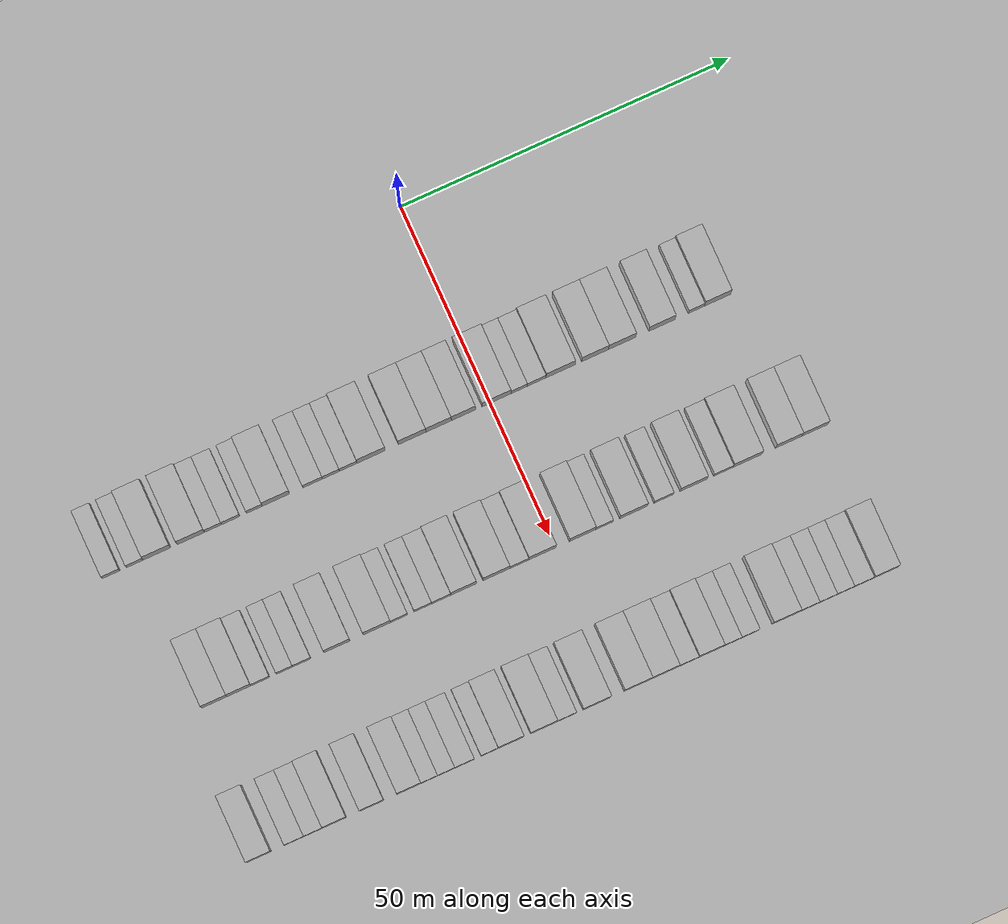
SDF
<sdf version="1.6">
 <world name="default">
  <include><name>ground_plane_1</name><uri>model://HANNAS_ground_plane</uri></include>
  <include>
   <name>ground_plane_2</name>
   <uri>model://HANNAS_ground_plane</uri>
   <pose>100 0 0  0 0 0</pose>
  </include>
  <model name="building_50">
   <static>1</static>
   <pose>25.0000 -57.4891 0 0.000000 0.000000 0.000000</pose>
   <link name="link">
    <pose>0 0 3.00 0 0 0</pose>
    <collision name="collision"><geometry><box><size>10.0000 2.6970 6.0000</size></box></geometry></collision>
    <visual name="visual">
     <cast_shadows>0</cast_shadows>
     <geometry><box><size>10.0000 2.6970 6.0000</size></box></geometry>
     <material>
      <script>
       <uri>model://HANNAS_wall/materials/scripts</uri>
       <uri>model://HANNAS_wall/materials/textures</uri>
       <name>vrc/HANNAS_wall</name>
      </script>
     </material>
    </visual>
   </link>
  </model>
  <model name="building_51">
   <static>1</static>
   <pose>25.0000 -53.8636 0 0.000000 0.000000 0.000000</pose>
   <link name="link">
    <pose>0 0 3.00 0 0 0</pose>
    <collision name="collision"><geometry><box><size>10.0000 2.5540 6.0000</size></box></geometry></collision>
    <visual name="visual">
     <cast_shadows>0</cast_shadows>
     <geometry><box><size>10.0000 2.5540 6.0000</size></box></geometry>
     <material>
      <script>
       <uri>model://HANNAS_wall/materials/scripts</uri>
       <uri>model://HANNAS_wall/materials/textures</uri>
       <name>vrc/HANNAS_wall</name>
      </script>
     </material>
    </visual>
   </link>
  </model>
  <model name="building_52">
   <static>1</static>
   <pose>25.0000 -50.5123 0 0.000000 0.000000 0.000000</pose>
   <link name="link">
    <pose>0 0 4.50 0 0 0</pose>
    <collision name="collision"><geometry><box><size>10.0000 4.1485 9.0000</size></box></geometry></collision>
    <visual name="visual">
     <cast_shadows>0</cast_shadows>
     <geometry><box><size>10.0000 4.1485 9.0000</size></box></geometry>
     <material>
      <script>
       <uri>model://HANNAS_wall/materials/scripts</uri>
       <uri>model://HANNAS_wall/materials/textures</uri>
       <name>vrc/HANNAS_wall</name>
      </script>
     </material>
    </visual>
   </link>
  </model>
  <model name="building_53">
   <static>1</static>
   <pose>25.0000 -45.3715 0 0.000000 0.000000 0.000000</pose>
   <link name="link">
    <pose>0 0 4.50 0 0 0</pose>
    <collision name="collision"><geometry><box><size>10.0000 4.1330 9.0000</size></box></geometry></collision>
    <visual name="visual">
     <cast_shadows>0</cast_shadows>
     <geometry><box><size>10.0000 4.1330 9.0000</size></box></geometry>
     <material>
      <script>
       <uri>model://HANNAS_wall/materials/scripts</uri>
       <uri>model://HANNAS_wall/materials/textures</uri>
       <name>vrc/HANNAS_wall</name>
      </script>
     </material>
    </visual>
   </link>
  </model>
  <model name="building_54">
   <static>1</static>
   <pose>25.0000 -42.0120 0 0.000000 0.000000 0.000000</pose>
   <link name="link">
    <pose>0 0 3.00 0 0 0</pose>
    <collision name="collision"><geometry><box><size>10.0000 2.5860 6.0000</size></box></geometry></collision>
    <visual name="visual">
     <cast_shadows>0</cast_shadows>
     <geometry><box><size>10.0000 2.5860 6.0000</size></box></geometry>
     <material>
      <script>
       <uri>model://HANNAS_wall/materials/scripts</uri>
       <uri>model://HANNAS_wall/materials/textures</uri>
       <name>vrc/HANNAS_wall</name>
      </script>
     </material>
    </visual>
   </link>
  </model>
  <model name="building_55">
   <static>1</static>
   <pose>25.0000 -39.3343 0 0.000000 0.000000 0.000000</pose>
   <link name="link">
    <pose>0 0 3.00 0 0 0</pose>
    <collision name="collision"><geometry><box><size>10.0000 2.7694 6.0000</size></box></geometry></collision>
    <visual name="visual">
     <cast_shadows>0</cast_shadows>
     <geometry><box><size>10.0000 2.7694 6.0000</size></box></geometry>
     <material>
      <script>
       <uri>model://HANNAS_wall/materials/scripts</uri>
       <uri>model://HANNAS_wall/materials/textures</uri>
       <name>vrc/HANNAS_wall</name>
      </script>
     </material>
    </visual>
   </link>
  </model>
  <model name="building_56">
   <static>1</static>
   <pose>25.0000 -35.7358 0 0.000000 0.000000 0.000000</pose>
   <link name="link">
    <pose>0 0 3.00 0 0 0</pose>
    <collision name="collision"><geometry><box><size>10.0000 2.4275 6.0000</size></box></geometry></collision>
    <visual name="visual">
     <cast_shadows>0</cast_shadows>
     <geometry><box><size>10.0000 2.4275 6.0000</size></box></geometry>
     <material>
      <script>
       <uri>model://HANNAS_wall/materials/scripts</uri>
       <uri>model://HANNAS_wall/materials/textures</uri>
       <name>vrc/HANNAS_wall</name>
      </script>
     </material>
    </visual>
   </link>
  </model>
  <model name="building_57">
   <static>1</static>
   <pose>25.0000 -32.4609 0 0.000000 0.000000 0.000000</pose>
   <link name="link">
    <pose>0 0 4.50 0 0 0</pose>
    <collision name="collision"><geometry><box><size>10.0000 4.1224 9.0000</size></box></geometry></collision>
    <visual name="visual">
     <cast_shadows>0</cast_shadows>
     <geometry><box><size>10.0000 4.1224 9.0000</size></box></geometry>
     <material>
      <script>
       <uri>model://HANNAS_wall/materials/scripts</uri>
       <uri>model://HANNAS_wall/materials/textures</uri>
       <name>vrc/HANNAS_wall</name>
      </script>
     </material>
    </visual>
   </link>
  </model>
  <model name="building_58">
   <static>1</static>
   <pose>25.0000 -26.9030 0 0.000000 0.000000 0.000000</pose>
   <link name="link">
    <pose>0 0 3.00 0 0 0</pose>
    <collision name="collision"><geometry><box><size>10.0000 2.9934 6.0000</size></box></geometry></collision>
    <visual name="visual">
     <cast_shadows>0</cast_shadows>
     <geometry><box><size>10.0000 2.9934 6.0000</size></box></geometry>
     <material>
      <script>
       <uri>model://HANNAS_wall/materials/scripts</uri>
       <uri>model://HANNAS_wall/materials/textures</uri>
       <name>vrc/HANNAS_wall</name>
      </script>
     </material>
    </visual>
   </link>
  </model>
  <model name="building_59">
   <static>1</static>
   <pose>25.0000 -24.1162 0 0.000000 0.000000 0.000000</pose>
   <link name="link">
    <pose>0 0 3.00 0 0 0</pose>
    <collision name="collision"><geometry><box><size>10.0000 2.5802 6.0000</size></box></geometry></collision>
    <visual name="visual">
     <cast_shadows>0</cast_shadows>
     <geometry><box><size>10.0000 2.5802 6.0000</size></box></geometry>
     <material>
      <script>
       <uri>model://HANNAS_wall/materials/scripts</uri>
       <uri>model://HANNAS_wall/materials/textures</uri>
       <name>vrc/HANNAS_wall</name>
      </script>
     </material>
    </visual>
   </link>
  </model>
  <model name="building_60">
   <static>1</static>
   <pose>25.0000 -21.4973 0 0.000000 0.000000 0.000000</pose>
   <link name="link">
    <pose>0 0 3.00 0 0 0</pose>
    <collision name="collision"><geometry><box><size>10.0000 2.6576 6.0000</size></box></geometry></collision>
    <visual name="visual">
     <cast_shadows>0</cast_shadows>
     <geometry><box><size>10.0000 2.6576 6.0000</size></box></geometry>
     <material>
      <script>
       <uri>model://HANNAS_wall/materials/scripts</uri>
       <uri>model://HANNAS_wall/materials/textures</uri>
       <name>vrc/HANNAS_wall</name>
      </script>
     </material>
    </visual>
   </link>
  </model>
  <model name="building_61">
   <static>1</static>
   <pose>25.0000 -18.0315 0 0.000000 0.000000 0.000000</pose>
   <link name="link">
    <pose>0 0 4.50 0 0 0</pose>
    <collision name="collision"><geometry><box><size>10.0000 4.2741 9.0000</size></box></geometry></collision>
    <visual name="visual">
     <cast_shadows>0</cast_shadows>
     <geometry><box><size>10.0000 4.2741 9.0000</size></box></geometry>
     <material>
      <script>
       <uri>model://HANNAS_wall/materials/scripts</uri>
       <uri>model://HANNAS_wall/materials/textures</uri>
       <name>vrc/HANNAS_wall</name>
      </script>
     </material>
    </visual>
   </link>
  </model>
  <model name="building_62">
   <static>1</static>
   <pose>25.0000 -11.8060 0 0.000000 0.000000 0.000000</pose>
   <link name="link">
    <pose>0 0 4.50 0 0 0</pose>
    <collision name="collision"><geometry><box><size>10.0000 4.1769 9.0000</size></box></geometry></collision>
    <visual name="visual">
     <cast_shadows>0</cast_shadows>
     <geometry><box><size>10.0000 4.1769 9.0000</size></box></geometry>
     <material>
      <script>
       <uri>model://HANNAS_wall/materials/scripts</uri>
       <uri>model://HANNAS_wall/materials/textures</uri>
       <name>vrc/HANNAS_wall</name>
      </script>
     </material>
    </visual>
   </link>
  </model>
  <model name="building_63">
   <static>1</static>
   <pose>25.0000 -7.7786 0 0.000000 0.000000 0.000000</pose>
   <link name="link">
    <pose>0 0 4.50 0 0 0</pose>
    <collision name="collision"><geometry><box><size>10.0000 3.8778 9.0000</size></box></geometry></collision>
    <visual name="visual">
     <cast_shadows>0</cast_shadows>
     <geometry><box><size>10.0000 3.8778 9.0000</size></box></geometry>
     <material>
      <script>
       <uri>model://HANNAS_wall/materials/scripts</uri>
       <uri>model://HANNAS_wall/materials/textures</uri>
       <name>vrc/HANNAS_wall</name>
      </script>
     </material>
    </visual>
   </link>
  </model>
  <model name="building_64">
   <static>1</static>
   <pose>25.0000 -4.0102 0 0.000000 0.000000 0.000000</pose>
   <link name="link">
    <pose>0 0 4.50 0 0 0</pose>
    <collision name="collision"><geometry><box><size>10.0000 3.6590 9.0000</size></box></geometry></collision>
    <visual name="visual">
     <cast_shadows>0</cast_shadows>
     <geometry><box><size>10.0000 3.6590 9.0000</size></box></geometry>
     <material>
      <script>
       <uri>model://HANNAS_wall/materials/scripts</uri>
       <uri>model://HANNAS_wall/materials/textures</uri>
       <name>vrc/HANNAS_wall</name>
      </script>
     </material>
    </visual>
   </link>
  </model>
  <model name="building_65">
   <static>1</static>
   <pose>25.0000 1.0121 0 0.000000 0.000000 0.000000</pose>
   <link name="link">
    <pose>0 0 4.50 0 0 0</pose>
    <collision name="collision"><geometry><box><size>10.0000 4.3856 9.0000</size></box></geometry></collision>
    <visual name="visual">
     <cast_shadows>0</cast_shadows>
     <geometry><box><size>10.0000 4.3856 9.0000</size></box></geometry>
     <material>
      <script>
       <uri>model://HANNAS_wall/materials/scripts</uri>
       <uri>model://HANNAS_wall/materials/textures</uri>
       <name>vrc/HANNAS_wall</name>
      </script>
     </material>
    </visual>
   </link>
  </model>
  <model name="building_66">
   <static>1</static>
   <pose>25.0000 4.4608 0 0.000000 0.000000 0.000000</pose>
   <link name="link">
    <pose>0 0 3.00 0 0 0</pose>
    <collision name="collision"><geometry><box><size>10.0000 2.5119 6.0000</size></box></geometry></collision>
    <visual name="visual">
     <cast_shadows>0</cast_shadows>
     <geometry><box><size>10.0000 2.5119 6.0000</size></box></geometry>
     <material>
      <script>
       <uri>model://HANNAS_wall/materials/scripts</uri>
       <uri>model://HANNAS_wall/materials/textures</uri>
       <name>vrc/HANNAS_wall</name>
      </script>
     </material>
    </visual>
   </link>
  </model>
  <model name="building_67">
   <static>1</static>
   <pose>25.0000 7.1323 0 0.000000 0.000000 0.000000</pose>
   <link name="link">
    <pose>0 0 3.00 0 0 0</pose>
    <collision name="collision"><geometry><box><size>10.0000 2.8311 6.0000</size></box></geometry></collision>
    <visual name="visual">
     <cast_shadows>0</cast_shadows>
     <geometry><box><size>10.0000 2.8311 6.0000</size></box></geometry>
     <material>
      <script>
       <uri>model://HANNAS_wall/materials/scripts</uri>
       <uri>model://HANNAS_wall/materials/textures</uri>
       <name>vrc/HANNAS_wall</name>
      </script>
     </material>
    </visual>
   </link>
  </model>
  <model name="building_68">
   <static>1</static>
   <pose>25.0000 10.7667 0 0.000000 0.000000 0.000000</pose>
   <link name="link">
    <pose>0 0 4.50 0 0 0</pose>
    <collision name="collision"><geometry><box><size>10.0000 4.4375 9.0000</size></box></geometry></collision>
    <visual name="visual">
     <cast_shadows>0</cast_shadows>
     <geometry><box><size>10.0000 4.4375 9.0000</size></box></geometry>
     <material>
      <script>
       <uri>model://HANNAS_wall/materials/scripts</uri>
       <uri>model://HANNAS_wall/materials/textures</uri>
       <name>vrc/HANNAS_wall</name>
      </script>
     </material>
    </visual>
   </link>
  </model>
  <model name="building_69">
   <static>1</static>
   <pose>25.0000 16.0203 0 0.000000 0.000000 0.000000</pose>
   <link name="link">
    <pose>0 0 4.50 0 0 0</pose>
    <collision name="collision"><geometry><box><size>10.0000 4.0698 9.0000</size></box></geometry></collision>
    <visual name="visual">
     <cast_shadows>0</cast_shadows>
     <geometry><box><size>10.0000 4.0698 9.0000</size></box></geometry>
     <material>
      <script>
       <uri>model://HANNAS_wall/materials/scripts</uri>
       <uri>model://HANNAS_wall/materials/textures</uri>
       <name>vrc/HANNAS_wall</name>
      </script>
     </material>
    </visual>
   </link>
  </model>
  <model name="building_70">
   <static>1</static>
   <pose>25.0000 20.1271 0 0.000000 0.000000 0.000000</pose>
   <link name="link">
    <pose>0 0 4.50 0 0 0</pose>
    <collision name="collision"><geometry><box><size>10.0000 4.1437 9.0000</size></box></geometry></collision>
    <visual name="visual">
     <cast_shadows>0</cast_shadows>
     <geometry><box><size>10.0000 4.1437 9.0000</size></box></geometry>
     <material>
      <script>
       <uri>model://HANNAS_wall/materials/scripts</uri>
       <uri>model://HANNAS_wall/materials/textures</uri>
       <name>vrc/HANNAS_wall</name>
      </script>
     </material>
    </visual>
   </link>
  </model>
  <model name="building_71">
   <static>1</static>
   <pose>25.0000 26.1913 0 0.000000 0.000000 0.000000</pose>
   <link name="link">
    <pose>0 0 4.50 0 0 0</pose>
    <collision name="collision"><geometry><box><size>10.0000 3.9847 9.0000</size></box></geometry></collision>
    <visual name="visual">
     <cast_shadows>0</cast_shadows>
     <geometry><box><size>10.0000 3.9847 9.0000</size></box></geometry>
     <material>
      <script>
       <uri>model://HANNAS_wall/materials/scripts</uri>
       <uri>model://HANNAS_wall/materials/textures</uri>
       <name>vrc/HANNAS_wall</name>
      </script>
     </material>
    </visual>
   </link>
  </model>
  <model name="building_72">
   <static>1</static>
   <pose>25.0000 31.4097 0 0.000000 0.000000 0.000000</pose>
   <link name="link">
    <pose>0 0 3.00 0 0 0</pose>
    <collision name="collision"><geometry><box><size>10.0000 2.4521 6.0000</size></box></geometry></collision>
    <visual name="visual">
     <cast_shadows>0</cast_shadows>
     <geometry><box><size>10.0000 2.4521 6.0000</size></box></geometry>
     <material>
      <script>
       <uri>model://HANNAS_wall/materials/scripts</uri>
       <uri>model://HANNAS_wall/materials/textures</uri>
       <name>vrc/HANNAS_wall</name>
      </script>
     </material>
    </visual>
   </link>
  </model>
  <model name="building_73">
   <static>1</static>
   <pose>25.0000 34.6333 0 0.000000 0.000000 0.000000</pose>
   <link name="link">
    <pose>0 0 4.50 0 0 0</pose>
    <collision name="collision"><geometry><box><size>10.0000 3.9953 9.0000</size></box></geometry></collision>
    <visual name="visual">
     <cast_shadows>0</cast_shadows>
     <geometry><box><size>10.0000 3.9953 9.0000</size></box></geometry>
     <material>
      <script>
       <uri>model://HANNAS_wall/materials/scripts</uri>
       <uri>model://HANNAS_wall/materials/textures</uri>
       <name>vrc/HANNAS_wall</name>
      </script>
     </material>
    </visual>
   </link>
  </model>
  <model name="building_174">
   <static>1</static>
   <pose>47.0000 -51.7095 0 0.000000 0.000000 0.000000</pose>
   <link name="link">
    <pose>0 0 4.50 0 0 0</pose>
    <collision name="collision"><geometry><box><size>10.0000 3.8253 9.0000</size></box></geometry></collision>
    <visual name="visual">
     <cast_shadows>0</cast_shadows>
     <geometry><box><size>10.0000 3.8253 9.0000</size></box></geometry>
     <material>
      <script>
       <uri>model://HANNAS_wall/materials/scripts</uri>
       <uri>model://HANNAS_wall/materials/textures</uri>
       <name>vrc/HANNAS_wall</name>
      </script>
     </material>
    </visual>
   </link>
  </model>
  <model name="building_175">
   <static>1</static>
   <pose>47.0000 -47.9745 0 0.000000 0.000000 0.000000</pose>
   <link name="link">
    <pose>0 0 4.50 0 0 0</pose>
    <collision name="collision"><geometry><box><size>10.0000 3.6447 9.0000</size></box></geometry></collision>
    <visual name="visual">
     <cast_shadows>0</cast_shadows>
     <geometry><box><size>10.0000 3.6447 9.0000</size></box></geometry>
     <material>
      <script>
       <uri>model://HANNAS_wall/materials/scripts</uri>
       <uri>model://HANNAS_wall/materials/textures</uri>
       <name>vrc/HANNAS_wall</name>
      </script>
     </material>
    </visual>
   </link>
  </model>
  <model name="building_176">
   <static>1</static>
   <pose>47.0000 -44.7426 0 0.000000 0.000000 0.000000</pose>
   <link name="link">
    <pose>0 0 3.00 0 0 0</pose>
    <collision name="collision"><geometry><box><size>10.0000 2.8192 6.0000</size></box></geometry></collision>
    <visual name="visual">
     <cast_shadows>0</cast_shadows>
     <geometry><box><size>10.0000 2.8192 6.0000</size></box></geometry>
     <material>
      <script>
       <uri>model://HANNAS_wall/materials/scripts</uri>
       <uri>model://HANNAS_wall/materials/textures</uri>
       <name>vrc/HANNAS_wall</name>
      </script>
     </material>
    </visual>
   </link>
  </model>
  <model name="building_177">
   <static>1</static>
   <pose>47.0000 -41.0930 0 0.000000 0.000000 0.000000</pose>
   <link name="link">
    <pose>0 0 3.00 0 0 0</pose>
    <collision name="collision"><geometry><box><size>10.0000 2.4799 6.0000</size></box></geometry></collision>
    <visual name="visual">
     <cast_shadows>0</cast_shadows>
     <geometry><box><size>10.0000 2.4799 6.0000</size></box></geometry>
     <material>
      <script>
       <uri>model://HANNAS_wall/materials/scripts</uri>
       <uri>model://HANNAS_wall/materials/textures</uri>
       <name>vrc/HANNAS_wall</name>
      </script>
     </material>
    </visual>
   </link>
  </model>
  <model name="building_178">
   <static>1</static>
   <pose>47.0000 -38.4789 0 0.000000 0.000000 0.000000</pose>
   <link name="link">
    <pose>0 0 3.00 0 0 0</pose>
    <collision name="collision"><geometry><box><size>10.0000 2.7483 6.0000</size></box></geometry></collision>
    <visual name="visual">
     <cast_shadows>0</cast_shadows>
     <geometry><box><size>10.0000 2.7483 6.0000</size></box></geometry>
     <material>
      <script>
       <uri>model://HANNAS_wall/materials/scripts</uri>
       <uri>model://HANNAS_wall/materials/textures</uri>
       <name>vrc/HANNAS_wall</name>
      </script>
     </material>
    </visual>
   </link>
  </model>
  <model name="building_179">
   <static>1</static>
   <pose>47.0000 -33.1369 0 0.000000 0.000000 0.000000</pose>
   <link name="link">
    <pose>0 0 4.50 0 0 0</pose>
    <collision name="collision"><geometry><box><size>10.0000 3.9358 9.0000</size></box></geometry></collision>
    <visual name="visual">
     <cast_shadows>0</cast_shadows>
     <geometry><box><size>10.0000 3.9358 9.0000</size></box></geometry>
     <material>
      <script>
       <uri>model://HANNAS_wall/materials/scripts</uri>
       <uri>model://HANNAS_wall/materials/textures</uri>
       <name>vrc/HANNAS_wall</name>
      </script>
     </material>
    </visual>
   </link>
  </model>
  <model name="building_180">
   <static>1</static>
   <pose>47.0000 -27.0961 0 0.000000 0.000000 0.000000</pose>
   <link name="link">
    <pose>0 0 4.50 0 0 0</pose>
    <collision name="collision"><geometry><box><size>10.0000 4.1457 9.0000</size></box></geometry></collision>
    <visual name="visual">
     <cast_shadows>0</cast_shadows>
     <geometry><box><size>10.0000 4.1457 9.0000</size></box></geometry>
     <material>
      <script>
       <uri>model://HANNAS_wall/materials/scripts</uri>
       <uri>model://HANNAS_wall/materials/textures</uri>
       <name>vrc/HANNAS_wall</name>
      </script>
     </material>
    </visual>
   </link>
  </model>
  <model name="building_181">
   <static>1</static>
   <pose>47.0000 -23.7338 0 0.000000 0.000000 0.000000</pose>
   <link name="link">
    <pose>0 0 3.00 0 0 0</pose>
    <collision name="collision"><geometry><box><size>10.0000 2.5789 6.0000</size></box></geometry></collision>
    <visual name="visual">
     <cast_shadows>0</cast_shadows>
     <geometry><box><size>10.0000 2.5789 6.0000</size></box></geometry>
     <material>
      <script>
       <uri>model://HANNAS_wall/materials/scripts</uri>
       <uri>model://HANNAS_wall/materials/textures</uri>
       <name>vrc/HANNAS_wall</name>
      </script>
     </material>
    </visual>
   </link>
  </model>
  <model name="building_182">
   <static>1</static>
   <pose>47.0000 -20.1153 0 0.000000 0.000000 0.000000</pose>
   <link name="link">
    <pose>0 0 3.00 0 0 0</pose>
    <collision name="collision"><geometry><box><size>10.0000 2.6581 6.0000</size></box></geometry></collision>
    <visual name="visual">
     <cast_shadows>0</cast_shadows>
     <geometry><box><size>10.0000 2.6581 6.0000</size></box></geometry>
     <material>
      <script>
       <uri>model://HANNAS_wall/materials/scripts</uri>
       <uri>model://HANNAS_wall/materials/textures</uri>
       <name>vrc/HANNAS_wall</name>
      </script>
     </material>
    </visual>
   </link>
  </model>
  <model name="building_183">
   <static>1</static>
   <pose>47.0000 -17.3359 0 0.000000 0.000000 0.000000</pose>
   <link name="link">
    <pose>0 0 3.00 0 0 0</pose>
    <collision name="collision"><geometry><box><size>10.0000 2.9008 6.0000</size></box></geometry></collision>
    <visual name="visual">
     <cast_shadows>0</cast_shadows>
     <geometry><box><size>10.0000 2.9008 6.0000</size></box></geometry>
     <material>
      <script>
       <uri>model://HANNAS_wall/materials/scripts</uri>
       <uri>model://HANNAS_wall/materials/textures</uri>
       <name>vrc/HANNAS_wall</name>
      </script>
     </material>
    </visual>
   </link>
  </model>
  <model name="building_184">
   <static>1</static>
   <pose>47.0000 -13.9478 0 0.000000 0.000000 0.000000</pose>
   <link name="link">
    <pose>0 0 4.50 0 0 0</pose>
    <collision name="collision"><geometry><box><size>10.0000 3.8754 9.0000</size></box></geometry></collision>
    <visual name="visual">
     <cast_shadows>0</cast_shadows>
     <geometry><box><size>10.0000 3.8754 9.0000</size></box></geometry>
     <material>
      <script>
       <uri>model://HANNAS_wall/materials/scripts</uri>
       <uri>model://HANNAS_wall/materials/textures</uri>
       <name>vrc/HANNAS_wall</name>
      </script>
     </material>
    </visual>
   </link>
  </model>
  <model name="building_185">
   <static>1</static>
   <pose>47.0000 -8.9620 0 0.000000 0.000000 0.000000</pose>
   <link name="link">
    <pose>0 0 4.50 0 0 0</pose>
    <collision name="collision"><geometry><box><size>10.0000 4.0961 9.0000</size></box></geometry></collision>
    <visual name="visual">
     <cast_shadows>0</cast_shadows>
     <geometry><box><size>10.0000 4.0961 9.0000</size></box></geometry>
     <material>
      <script>
       <uri>model://HANNAS_wall/materials/scripts</uri>
       <uri>model://HANNAS_wall/materials/textures</uri>
       <name>vrc/HANNAS_wall</name>
      </script>
     </material>
    </visual>
   </link>
  </model>
  <model name="building_186">
   <static>1</static>
   <pose>47.0000 -5.4801 0 0.000000 0.000000 0.000000</pose>
   <link name="link">
    <pose>0 0 3.00 0 0 0</pose>
    <collision name="collision"><geometry><box><size>10.0000 2.8677 6.0000</size></box></geometry></collision>
    <visual name="visual">
     <cast_shadows>0</cast_shadows>
     <geometry><box><size>10.0000 2.8677 6.0000</size></box></geometry>
     <material>
      <script>
       <uri>model://HANNAS_wall/materials/scripts</uri>
       <uri>model://HANNAS_wall/materials/textures</uri>
       <name>vrc/HANNAS_wall</name>
      </script>
     </material>
    </visual>
   </link>
  </model>
  <model name="building_187">
   <static>1</static>
   <pose>47.0000 -1.9641 0 0.000000 0.000000 0.000000</pose>
   <link name="link">
    <pose>0 0 4.50 0 0 0</pose>
    <collision name="collision"><geometry><box><size>10.0000 4.1644 9.0000</size></box></geometry></collision>
    <visual name="visual">
     <cast_shadows>0</cast_shadows>
     <geometry><box><size>10.0000 4.1644 9.0000</size></box></geometry>
     <material>
      <script>
       <uri>model://HANNAS_wall/materials/scripts</uri>
       <uri>model://HANNAS_wall/materials/textures</uri>
       <name>vrc/HANNAS_wall</name>
      </script>
     </material>
    </visual>
   </link>
  </model>
  <model name="building_188">
   <static>1</static>
   <pose>47.0000 4.1217 0 0.000000 0.000000 0.000000</pose>
   <link name="link">
    <pose>0 0 4.50 0 0 0</pose>
    <collision name="collision"><geometry><box><size>10.0000 4.0072 9.0000</size></box></geometry></collision>
    <visual name="visual">
     <cast_shadows>0</cast_shadows>
     <geometry><box><size>10.0000 4.0072 9.0000</size></box></geometry>
     <material>
      <script>
       <uri>model://HANNAS_wall/materials/scripts</uri>
       <uri>model://HANNAS_wall/materials/textures</uri>
       <name>vrc/HANNAS_wall</name>
      </script>
     </material>
    </visual>
   </link>
  </model>
  <model name="building_189">
   <static>1</static>
   <pose>47.0000 7.4444 0 0.000000 0.000000 0.000000</pose>
   <link name="link">
    <pose>0 0 3.00 0 0 0</pose>
    <collision name="collision"><geometry><box><size>10.0000 2.6383 6.0000</size></box></geometry></collision>
    <visual name="visual">
     <cast_shadows>0</cast_shadows>
     <geometry><box><size>10.0000 2.6383 6.0000</size></box></geometry>
     <material>
      <script>
       <uri>model://HANNAS_wall/materials/scripts</uri>
       <uri>model://HANNAS_wall/materials/textures</uri>
       <name>vrc/HANNAS_wall</name>
      </script>
     </material>
    </visual>
   </link>
  </model>
  <model name="building_190">
   <static>1</static>
   <pose>47.0000 11.8732 0 0.000000 0.000000 0.000000</pose>
   <link name="link">
    <pose>0 0 4.50 0 0 0</pose>
    <collision name="collision"><geometry><box><size>10.0000 4.2192 9.0000</size></box></geometry></collision>
    <visual name="visual">
     <cast_shadows>0</cast_shadows>
     <geometry><box><size>10.0000 4.2192 9.0000</size></box></geometry>
     <material>
      <script>
       <uri>model://HANNAS_wall/materials/scripts</uri>
       <uri>model://HANNAS_wall/materials/textures</uri>
       <name>vrc/HANNAS_wall</name>
      </script>
     </material>
    </visual>
   </link>
  </model>
  <model name="building_191">
   <static>1</static>
   <pose>47.0000 16.4602 0 0.000000 0.000000 0.000000</pose>
   <link name="link">
    <pose>0 0 3.00 0 0 0</pose>
    <collision name="collision"><geometry><box><size>10.0000 2.9548 6.0000</size></box></geometry></collision>
    <visual name="visual">
     <cast_shadows>0</cast_shadows>
     <geometry><box><size>10.0000 2.9548 6.0000</size></box></geometry>
     <material>
      <script>
       <uri>model://HANNAS_wall/materials/scripts</uri>
       <uri>model://HANNAS_wall/materials/textures</uri>
       <name>vrc/HANNAS_wall</name>
      </script>
     </material>
    </visual>
   </link>
  </model>
  <model name="building_192">
   <static>1</static>
   <pose>47.0000 20.9953 0 0.000000 0.000000 0.000000</pose>
   <link name="link">
    <pose>0 0 4.50 0 0 0</pose>
    <collision name="collision"><geometry><box><size>10.0000 4.1156 9.0000</size></box></geometry></collision>
    <visual name="visual">
     <cast_shadows>0</cast_shadows>
     <geometry><box><size>10.0000 4.1156 9.0000</size></box></geometry>
     <material>
      <script>
       <uri>model://HANNAS_wall/materials/scripts</uri>
       <uri>model://HANNAS_wall/materials/textures</uri>
       <name>vrc/HANNAS_wall</name>
      </script>
     </material>
    </visual>
   </link>
  </model>
  <model name="building_193">
   <static>1</static>
   <pose>47.0000 25.5246 0 0.000000 0.000000 0.000000</pose>
   <link name="link">
    <pose>0 0 3.00 0 0 0</pose>
    <collision name="collision"><geometry><box><size>10.0000 2.9430 6.0000</size></box></geometry></collision>
    <visual name="visual">
     <cast_shadows>0</cast_shadows>
     <geometry><box><size>10.0000 2.9430 6.0000</size></box></geometry>
     <material>
      <script>
       <uri>model://HANNAS_wall/materials/scripts</uri>
       <uri>model://HANNAS_wall/materials/textures</uri>
       <name>vrc/HANNAS_wall</name>
      </script>
     </material>
    </visual>
   </link>
  </model>
  <model name="building_194">
   <static>1</static>
   <pose>47.0000 29.2082 0 0.000000 0.000000 0.000000</pose>
   <link name="link">
    <pose>0 0 4.50 0 0 0</pose>
    <collision name="collision"><geometry><box><size>10.0000 4.4242 9.0000</size></box></geometry></collision>
    <visual name="visual">
     <cast_shadows>0</cast_shadows>
     <geometry><box><size>10.0000 4.4242 9.0000</size></box></geometry>
     <material>
      <script>
       <uri>model://HANNAS_wall/materials/scripts</uri>
       <uri>model://HANNAS_wall/materials/textures</uri>
       <name>vrc/HANNAS_wall</name>
      </script>
     </material>
    </visual>
   </link>
  </model>
  <model name="building_195">
   <static>1</static>
   <pose>47.0000 35.4292 0 0.000000 0.000000 0.000000</pose>
   <link name="link">
    <pose>0 0 4.50 0 0 0</pose>
    <collision name="collision"><geometry><box><size>10.0000 4.0177 9.0000</size></box></geometry></collision>
    <visual name="visual">
     <cast_shadows>0</cast_shadows>
     <geometry><box><size>10.0000 4.0177 9.0000</size></box></geometry>
     <material>
      <script>
       <uri>model://HANNAS_wall/materials/scripts</uri>
       <uri>model://HANNAS_wall/materials/textures</uri>
       <name>vrc/HANNAS_wall</name>
      </script>
     </material>
    </visual>
   </link>
  </model>
  <model name="building_196">
   <static>1</static>
   <pose>47.0000 39.4321 0 0.000000 0.000000 0.000000</pose>
   <link name="link">
    <pose>0 0 4.50 0 0 0</pose>
    <collision name="collision"><geometry><box><size>10.0000 3.9881 9.0000</size></box></geometry></collision>
    <visual name="visual">
     <cast_shadows>0</cast_shadows>
     <geometry><box><size>10.0000 3.9881 9.0000</size></box></geometry>
     <material>
      <script>
       <uri>model://HANNAS_wall/materials/scripts</uri>
       <uri>model://HANNAS_wall/materials/textures</uri>
       <name>vrc/HANNAS_wall</name>
      </script>
     </material>
    </visual>
   </link>
  </model>
  <model name="building_288">
   <static>1</static>
   <pose>69.0000 -54.8933 0 0.000000 0.000000 0.000000</pose>
   <link name="link">
    <pose>0 0 4.50 0 0 0</pose>
    <collision name="collision"><geometry><box><size>10.0000 3.7332 9.0000</size></box></geometry></collision>
    <visual name="visual">
     <cast_shadows>0</cast_shadows>
     <geometry><box><size>10.0000 3.7332 9.0000</size></box></geometry>
     <material>
      <script>
       <uri>model://HANNAS_wall/materials/scripts</uri>
       <uri>model://HANNAS_wall/materials/textures</uri>
       <name>vrc/HANNAS_wall</name>
      </script>
     </material>
    </visual>
   </link>
  </model>
  <model name="building_289">
   <static>1</static>
   <pose>69.0000 -49.5510 0 0.000000 0.000000 0.000000</pose>
   <link name="link">
    <pose>0 0 3.00 0 0 0</pose>
    <collision name="collision"><geometry><box><size>10.0000 2.9513 6.0000</size></box></geometry></collision>
    <visual name="visual">
     <cast_shadows>0</cast_shadows>
     <geometry><box><size>10.0000 2.9513 6.0000</size></box></geometry>
     <material>
      <script>
       <uri>model://HANNAS_wall/materials/scripts</uri>
       <uri>model://HANNAS_wall/materials/textures</uri>
       <name>vrc/HANNAS_wall</name>
      </script>
     </material>
    </visual>
   </link>
  </model>
  <model name="building_290">
   <static>1</static>
   <pose>69.0000 -46.6633 0 0.000000 0.000000 0.000000</pose>
   <link name="link">
    <pose>0 0 3.00 0 0 0</pose>
    <collision name="collision"><geometry><box><size>10.0000 2.8241 6.0000</size></box></geometry></collision>
    <visual name="visual">
     <cast_shadows>0</cast_shadows>
     <geometry><box><size>10.0000 2.8241 6.0000</size></box></geometry>
     <material>
      <script>
       <uri>model://HANNAS_wall/materials/scripts</uri>
       <uri>model://HANNAS_wall/materials/textures</uri>
       <name>vrc/HANNAS_wall</name>
      </script>
     </material>
    </visual>
   </link>
  </model>
  <model name="building_291">
   <static>1</static>
   <pose>69.0000 -43.4476 0 0.000000 0.000000 0.000000</pose>
   <link name="link">
    <pose>0 0 4.50 0 0 0</pose>
    <collision name="collision"><geometry><box><size>10.0000 3.6073 9.0000</size></box></geometry></collision>
    <visual name="visual">
     <cast_shadows>0</cast_shadows>
     <geometry><box><size>10.0000 3.6073 9.0000</size></box></geometry>
     <material>
      <script>
       <uri>model://HANNAS_wall/materials/scripts</uri>
       <uri>model://HANNAS_wall/materials/textures</uri>
       <name>vrc/HANNAS_wall</name>
      </script>
     </material>
    </visual>
   </link>
  </model>
  <model name="building_292">
   <static>1</static>
   <pose>69.0000 -37.8157 0 0.000000 0.000000 0.000000</pose>
   <link name="link">
    <pose>0 0 4.50 0 0 0</pose>
    <collision name="collision"><geometry><box><size>10.0000 3.6566 9.0000</size></box></geometry></collision>
    <visual name="visual">
     <cast_shadows>0</cast_shadows>
     <geometry><box><size>10.0000 3.6566 9.0000</size></box></geometry>
     <material>
      <script>
       <uri>model://HANNAS_wall/materials/scripts</uri>
       <uri>model://HANNAS_wall/materials/textures</uri>
       <name>vrc/HANNAS_wall</name>
      </script>
     </material>
    </visual>
   </link>
  </model>
  <model name="building_293">
   <static>1</static>
   <pose>69.0000 -32.1669 0 0.000000 0.000000 0.000000</pose>
   <link name="link">
    <pose>0 0 4.50 0 0 0</pose>
    <collision name="collision"><geometry><box><size>10.0000 3.6410 9.0000</size></box></geometry></collision>
    <visual name="visual">
     <cast_shadows>0</cast_shadows>
     <geometry><box><size>10.0000 3.6410 9.0000</size></box></geometry>
     <material>
      <script>
       <uri>model://HANNAS_wall/materials/scripts</uri>
       <uri>model://HANNAS_wall/materials/textures</uri>
       <name>vrc/HANNAS_wall</name>
      </script>
     </material>
    </visual>
   </link>
  </model>
  <model name="building_294">
   <static>1</static>
   <pose>69.0000 -29.0853 0 0.000000 0.000000 0.000000</pose>
   <link name="link">
    <pose>0 0 3.00 0 0 0</pose>
    <collision name="collision"><geometry><box><size>10.0000 2.5222 6.0000</size></box></geometry></collision>
    <visual name="visual">
     <cast_shadows>0</cast_shadows>
     <geometry><box><size>10.0000 2.5222 6.0000</size></box></geometry>
     <material>
      <script>
       <uri>model://HANNAS_wall/materials/scripts</uri>
       <uri>model://HANNAS_wall/materials/textures</uri>
       <name>vrc/HANNAS_wall</name>
      </script>
     </material>
    </visual>
   </link>
  </model>
  <model name="building_295">
   <static>1</static>
   <pose>69.0000 -26.5265 0 0.000000 0.000000 0.000000</pose>
   <link name="link">
    <pose>0 0 3.00 0 0 0</pose>
    <collision name="collision"><geometry><box><size>10.0000 2.5953 6.0000</size></box></geometry></collision>
    <visual name="visual">
     <cast_shadows>0</cast_shadows>
     <geometry><box><size>10.0000 2.5953 6.0000</size></box></geometry>
     <material>
      <script>
       <uri>model://HANNAS_wall/materials/scripts</uri>
       <uri>model://HANNAS_wall/materials/textures</uri>
       <name>vrc/HANNAS_wall</name>
      </script>
     </material>
    </visual>
   </link>
  </model>
  <model name="building_296">
   <static>1</static>
   <pose>69.0000 -23.7498 0 0.000000 0.000000 0.000000</pose>
   <link name="link">
    <pose>0 0 3.00 0 0 0</pose>
    <collision name="collision"><geometry><box><size>10.0000 2.9580 6.0000</size></box></geometry></collision>
    <visual name="visual">
     <cast_shadows>0</cast_shadows>
     <geometry><box><size>10.0000 2.9580 6.0000</size></box></geometry>
     <material>
      <script>
       <uri>model://HANNAS_wall/materials/scripts</uri>
       <uri>model://HANNAS_wall/materials/textures</uri>
       <name>vrc/HANNAS_wall</name>
      </script>
     </material>
    </visual>
   </link>
  </model>
  <model name="building_297">
   <static>1</static>
   <pose>69.0000 -19.9651 0 0.000000 0.000000 0.000000</pose>
   <link name="link">
    <pose>0 0 3.00 0 0 0</pose>
    <collision name="collision"><geometry><box><size>10.0000 2.6115 6.0000</size></box></geometry></collision>
    <visual name="visual">
     <cast_shadows>0</cast_shadows>
     <geometry><box><size>10.0000 2.6115 6.0000</size></box></geometry>
     <material>
      <script>
       <uri>model://HANNAS_wall/materials/scripts</uri>
       <uri>model://HANNAS_wall/materials/textures</uri>
       <name>vrc/HANNAS_wall</name>
      </script>
     </material>
    </visual>
   </link>
  </model>
  <model name="building_298">
   <static>1</static>
   <pose>69.0000 -16.7055 0 0.000000 0.000000 0.000000</pose>
   <link name="link">
    <pose>0 0 4.50 0 0 0</pose>
    <collision name="collision"><geometry><box><size>10.0000 3.9076 9.0000</size></box></geometry></collision>
    <visual name="visual">
     <cast_shadows>0</cast_shadows>
     <geometry><box><size>10.0000 3.9076 9.0000</size></box></geometry>
     <material>
      <script>
       <uri>model://HANNAS_wall/materials/scripts</uri>
       <uri>model://HANNAS_wall/materials/textures</uri>
       <name>vrc/HANNAS_wall</name>
      </script>
     </material>
    </visual>
   </link>
  </model>
  <model name="building_299">
   <static>1</static>
   <pose>69.0000 -11.7170 0 0.000000 0.000000 0.000000</pose>
   <link name="link">
    <pose>0 0 4.50 0 0 0</pose>
    <collision name="collision"><geometry><box><size>10.0000 4.0693 9.0000</size></box></geometry></collision>
    <visual name="visual">
     <cast_shadows>0</cast_shadows>
     <geometry><box><size>10.0000 4.0693 9.0000</size></box></geometry>
     <material>
      <script>
       <uri>model://HANNAS_wall/materials/scripts</uri>
       <uri>model://HANNAS_wall/materials/textures</uri>
       <name>vrc/HANNAS_wall</name>
      </script>
     </material>
    </visual>
   </link>
  </model>
  <model name="building_300">
   <static>1</static>
   <pose>69.0000 -8.2397 0 0.000000 0.000000 0.000000</pose>
   <link name="link">
    <pose>0 0 3.00 0 0 0</pose>
    <collision name="collision"><geometry><box><size>10.0000 2.8853 6.0000</size></box></geometry></collision>
    <visual name="visual">
     <cast_shadows>0</cast_shadows>
     <geometry><box><size>10.0000 2.8853 6.0000</size></box></geometry>
     <material>
      <script>
       <uri>model://HANNAS_wall/materials/scripts</uri>
       <uri>model://HANNAS_wall/materials/textures</uri>
       <name>vrc/HANNAS_wall</name>
      </script>
     </material>
    </visual>
   </link>
  </model>
  <model name="building_301">
   <static>1</static>
   <pose>69.0000 -3.6738 0 0.000000 0.000000 0.000000</pose>
   <link name="link">
    <pose>0 0 4.50 0 0 0</pose>
    <collision name="collision"><geometry><box><size>10.0000 4.2464 9.0000</size></box></geometry></collision>
    <visual name="visual">
     <cast_shadows>0</cast_shadows>
     <geometry><box><size>10.0000 4.2464 9.0000</size></box></geometry>
     <material>
      <script>
       <uri>model://HANNAS_wall/materials/scripts</uri>
       <uri>model://HANNAS_wall/materials/textures</uri>
       <name>vrc/HANNAS_wall</name>
      </script>
     </material>
    </visual>
   </link>
  </model>
  <model name="building_302">
   <static>1</static>
   <pose>69.0000 2.5565 0 0.000000 0.000000 0.000000</pose>
   <link name="link">
    <pose>0 0 4.50 0 0 0</pose>
    <collision name="collision"><geometry><box><size>10.0000 4.2143 9.0000</size></box></geometry></collision>
    <visual name="visual">
     <cast_shadows>0</cast_shadows>
     <geometry><box><size>10.0000 4.2143 9.0000</size></box></geometry>
     <material>
      <script>
       <uri>model://HANNAS_wall/materials/scripts</uri>
       <uri>model://HANNAS_wall/materials/textures</uri>
       <name>vrc/HANNAS_wall</name>
      </script>
     </material>
    </visual>
   </link>
  </model>
  <model name="building_303">
   <static>1</static>
   <pose>69.0000 6.7130 0 0.000000 0.000000 0.000000</pose>
   <link name="link">
    <pose>0 0 4.50 0 0 0</pose>
    <collision name="collision"><geometry><box><size>10.0000 4.0987 9.0000</size></box></geometry></collision>
    <visual name="visual">
     <cast_shadows>0</cast_shadows>
     <geometry><box><size>10.0000 4.0987 9.0000</size></box></geometry>
     <material>
      <script>
       <uri>model://HANNAS_wall/materials/scripts</uri>
       <uri>model://HANNAS_wall/materials/textures</uri>
       <name>vrc/HANNAS_wall</name>
      </script>
     </material>
    </visual>
   </link>
  </model>
  <model name="building_304">
   <static>1</static>
   <pose>69.0000 10.2440 0 0.000000 0.000000 0.000000</pose>
   <link name="link">
    <pose>0 0 3.00 0 0 0</pose>
    <collision name="collision"><geometry><box><size>10.0000 2.9633 6.0000</size></box></geometry></collision>
    <visual name="visual">
     <cast_shadows>0</cast_shadows>
     <geometry><box><size>10.0000 2.9633 6.0000</size></box></geometry>
     <material>
      <script>
       <uri>model://HANNAS_wall/materials/scripts</uri>
       <uri>model://HANNAS_wall/materials/textures</uri>
       <name>vrc/HANNAS_wall</name>
      </script>
     </material>
    </visual>
   </link>
  </model>
  <model name="building_305">
   <static>1</static>
   <pose>69.0000 13.6314 0 0.000000 0.000000 0.000000</pose>
   <link name="link">
    <pose>0 0 4.50 0 0 0</pose>
    <collision name="collision"><geometry><box><size>10.0000 3.8116 9.0000</size></box></geometry></collision>
    <visual name="visual">
     <cast_shadows>0</cast_shadows>
     <geometry><box><size>10.0000 3.8116 9.0000</size></box></geometry>
     <material>
      <script>
       <uri>model://HANNAS_wall/materials/scripts</uri>
       <uri>model://HANNAS_wall/materials/textures</uri>
       <name>vrc/HANNAS_wall</name>
      </script>
     </material>
    </visual>
   </link>
  </model>
  <model name="building_306">
   <static>1</static>
   <pose>69.0000 16.8747 0 0.000000 0.000000 0.000000</pose>
   <link name="link">
    <pose>0 0 3.00 0 0 0</pose>
    <collision name="collision"><geometry><box><size>10.0000 2.6749 6.0000</size></box></geometry></collision>
    <visual name="visual">
     <cast_shadows>0</cast_shadows>
     <geometry><box><size>10.0000 2.6749 6.0000</size></box></geometry>
     <material>
      <script>
       <uri>model://HANNAS_wall/materials/scripts</uri>
       <uri>model://HANNAS_wall/materials/textures</uri>
       <name>vrc/HANNAS_wall</name>
      </script>
     </material>
    </visual>
   </link>
  </model>
  <model name="building_307">
   <static>1</static>
   <pose>69.0000 19.5692 0 0.000000 0.000000 0.000000</pose>
   <link name="link">
    <pose>0 0 3.00 0 0 0</pose>
    <collision name="collision"><geometry><box><size>10.0000 2.7142 6.0000</size></box></geometry></collision>
    <visual name="visual">
     <cast_shadows>0</cast_shadows>
     <geometry><box><size>10.0000 2.7142 6.0000</size></box></geometry>
     <material>
      <script>
       <uri>model://HANNAS_wall/materials/scripts</uri>
       <uri>model://HANNAS_wall/materials/textures</uri>
       <name>vrc/HANNAS_wall</name>
      </script>
     </material>
    </visual>
   </link>
  </model>
  <model name="building_308">
   <static>1</static>
   <pose>69.0000 25.0235 0 0.000000 0.000000 0.000000</pose>
   <link name="link">
    <pose>0 0 4.50 0 0 0</pose>
    <collision name="collision"><geometry><box><size>10.0000 4.1944 9.0000</size></box></geometry></collision>
    <visual name="visual">
     <cast_shadows>0</cast_shadows>
     <geometry><box><size>10.0000 4.1944 9.0000</size></box></geometry>
     <material>
      <script>
       <uri>model://HANNAS_wall/materials/scripts</uri>
       <uri>model://HANNAS_wall/materials/textures</uri>
       <name>vrc/HANNAS_wall</name>
      </script>
     </material>
    </visual>
   </link>
  </model>
  <model name="building_309">
   <static>1</static>
   <pose>69.0000 28.5607 0 0.000000 0.000000 0.000000</pose>
   <link name="link">
    <pose>0 0 3.00 0 0 0</pose>
    <collision name="collision"><geometry><box><size>10.0000 2.8800 6.0000</size></box></geometry></collision>
    <visual name="visual">
     <cast_shadows>0</cast_shadows>
     <geometry><box><size>10.0000 2.8800 6.0000</size></box></geometry>
     <material>
      <script>
       <uri>model://HANNAS_wall/materials/scripts</uri>
       <uri>model://HANNAS_wall/materials/textures</uri>
       <name>vrc/HANNAS_wall</name>
      </script>
     </material>
    </visual>
   </link>
  </model>
  <model name="building_310">
   <static>1</static>
   <pose>69.0000 31.3250 0 0.000000 0.000000 0.000000</pose>
   <link name="link">
    <pose>0 0 3.00 0 0 0</pose>
    <collision name="collision"><geometry><box><size>10.0000 2.6487 6.0000</size></box></geometry></collision>
    <visual name="visual">
     <cast_shadows>0</cast_shadows>
     <geometry><box><size>10.0000 2.6487 6.0000</size></box></geometry>
     <material>
      <script>
       <uri>model://HANNAS_wall/materials/scripts</uri>
       <uri>model://HANNAS_wall/materials/textures</uri>
       <name>vrc/HANNAS_wall</name>
      </script>
     </material>
    </visual>
   </link>
  </model>
  <model name="building_311">
   <static>1</static>
   <pose>69.0000 33.9498 0 0.000000 0.000000 0.000000</pose>
   <link name="link">
    <pose>0 0 3.00 0 0 0</pose>
    <collision name="collision"><geometry><box><size>10.0000 2.6009 6.0000</size></box></geometry></collision>
    <visual name="visual">
     <cast_shadows>0</cast_shadows>
     <geometry><box><size>10.0000 2.6009 6.0000</size></box></geometry>
     <material>
      <script>
       <uri>model://HANNAS_wall/materials/scripts</uri>
       <uri>model://HANNAS_wall/materials/textures</uri>
       <name>vrc/HANNAS_wall</name>
      </script>
     </material>
    </visual>
   </link>
  </model>
  <model name="building_312">
   <static>1</static>
   <pose>69.0000 36.7471 0 0.000000 0.000000 0.000000</pose>
   <link name="link">
    <pose>0 0 3.00 0 0 0</pose>
    <collision name="collision"><geometry><box><size>10.0000 2.9937 6.0000</size></box></geometry></collision>
    <visual name="visual">
     <cast_shadows>0</cast_shadows>
     <geometry><box><size>10.0000 2.9937 6.0000</size></box></geometry>
     <material>
      <script>
       <uri>model://HANNAS_wall/materials/scripts</uri>
       <uri>model://HANNAS_wall/materials/textures</uri>
       <name>vrc/HANNAS_wall</name>
      </script>
     </material>
    </visual>
   </link>
  </model>
  <model name="building_313">
   <static>1</static>
   <pose>69.0000 40.1337 0 0.000000 0.000000 0.000000</pose>
   <link name="link">
    <pose>0 0 4.50 0 0 0</pose>
    <collision name="collision"><geometry><box><size>10.0000 3.7796 9.0000</size></box></geometry></collision>
    <visual name="visual">
     <cast_shadows>0</cast_shadows>
     <geometry><box><size>10.0000 3.7796 9.0000</size></box></geometry>
     <material>
      <script>
       <uri>model://HANNAS_wall/materials/scripts</uri>
       <uri>model://HANNAS_wall/materials/textures</uri>
       <name>vrc/HANNAS_wall</name>
      </script>
     </material>
    </visual>
   </link>
  </model>
 </world>
</sdf>
